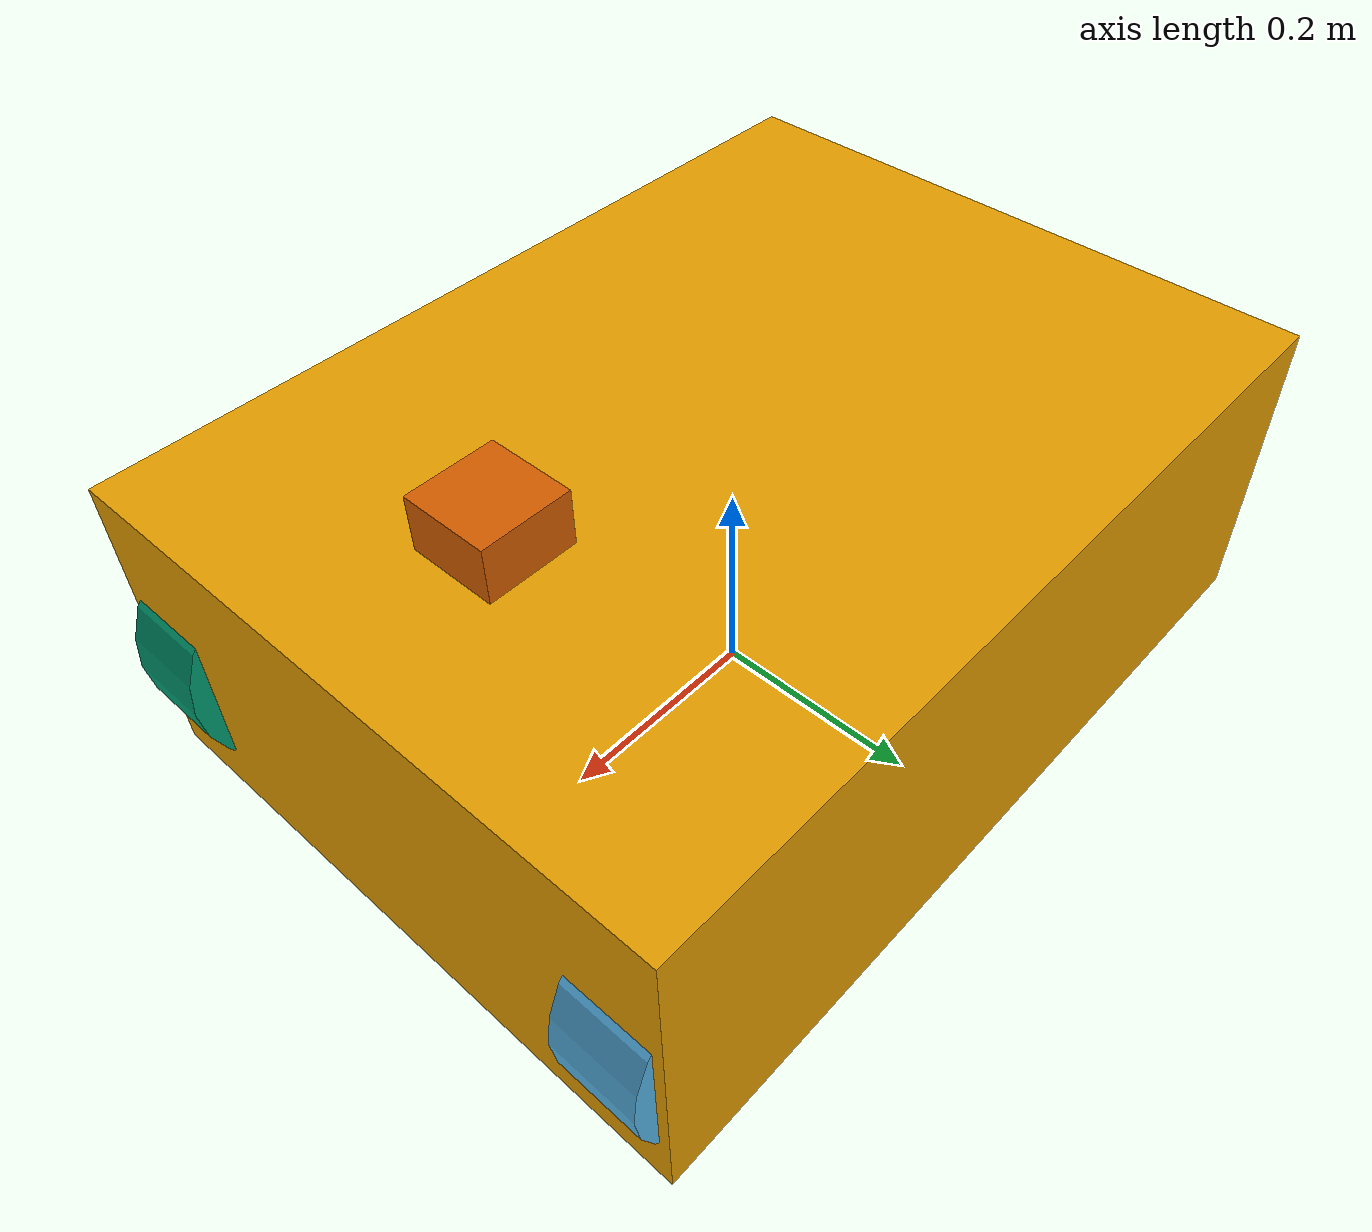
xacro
<?xml version="1.0"?>

<robot name="mock_rover"
       xmlns:xacro="http://www.ros.org/wiki/xacro">

  <xacro:include filename="chassis.xacro"/>
  <xacro:include filename="wheels.xacro"/>
  <xacro:include filename="depth_camera.xacro"/>
  <xacro:include filename="gazebo_plugins.xacro"/>
  <xacro:include filename="ros2_control.xacro" />
</robot>

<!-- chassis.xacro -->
<robot xmlns:xacro="http://www.ros.org/wiki/xacro">

<link name="base_link">

  <inertial>
    <origin xyz="0 0 0"/>
    <mass value="30"/>
    <inertia
      ixx="2.0"
      iyy="2.0"
      izz="2.0"
      ixy="0"
      ixz="0"
      iyz="0"/>
  </inertial>

  <visual>
    <origin xyz="0 0 0.15"/>
    <geometry>
      <box size="0.8 0.6 0.3"/>
    </geometry>
  </visual>

  <collision>
    <origin xyz="0 0 0.15"/>
    <geometry>
      <box size="0.8 0.6 0.3"/>
    </geometry>
  </collision>

</link>

</robot>

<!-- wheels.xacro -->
<robot xmlns:xacro="http://www.ros.org/wiki/xacro">

<xacro:macro name="wheel" params="name x y">

<link name="${name}_wheel">

  <visual>
    <origin rpy="1.5708 0 0"/>
    <geometry>
      <cylinder radius="0.12"
                length="0.08"/>
    </geometry>
  </visual>

  <collision>
    <origin rpy="1.5708 0 0"/>
    <geometry>
      <cylinder radius="0.12"
                length="0.08"/>
    </geometry>
  </collision>

  <inertial>
    <mass value="1"/>
    <origin xyz="0 0 0"/>
    <inertia
      ixx="0.01"
      iyy="0.01"
      izz="0.01"
      ixy="0"
      ixz="0"
      iyz="0"/>
  </inertial>

</link>

<joint name="${name}_joint"
       type="continuous">

  <parent link="base_link"/>
  <child link="${name}_wheel"/>

  <origin xyz="${x} ${y} 0.12"/>

  <axis xyz="0 1 0"/>

</joint>

</xacro:macro>

<xacro:wheel name="front_left"  x="0.30"  y="0.25"/>
<xacro:wheel name="front_right" x="0.30"  y="-0.25"/>
<xacro:wheel name="rear_left"   x="-0.30" y="0.25"/>
<xacro:wheel name="rear_right"  x="-0.30" y="-0.25"/>

</robot>

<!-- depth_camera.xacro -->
<robot xmlns:xacro="http://www.ros.org/wiki/xacro">

  <link name="depth_camera_link">
    <inertial>
      <mass value="0.1" />
      <origin xyz="0 0 0" />
      <inertia
        ixx="0.0001"
        ixy="0.0"
        ixz="0.0"
        iyy="0.0001"
        iyz="0.0"
        izz="0.0001" />
    </inertial>

    <visual>
      <geometry>
        <box size="0.08 0.08 0.05" />
      </geometry>
    </visual>

    <collision>
      <geometry>
        <box size="0.08 0.08 0.05" />
      </geometry>
    </collision>
  </link>

  <joint
    name="depth_camera_joint"
    type="fixed">
    <parent link="base_link" />
    <child link="depth_camera_link" />
    <origin xyz="0.25 0 0.35" />
  </joint>

</robot>
